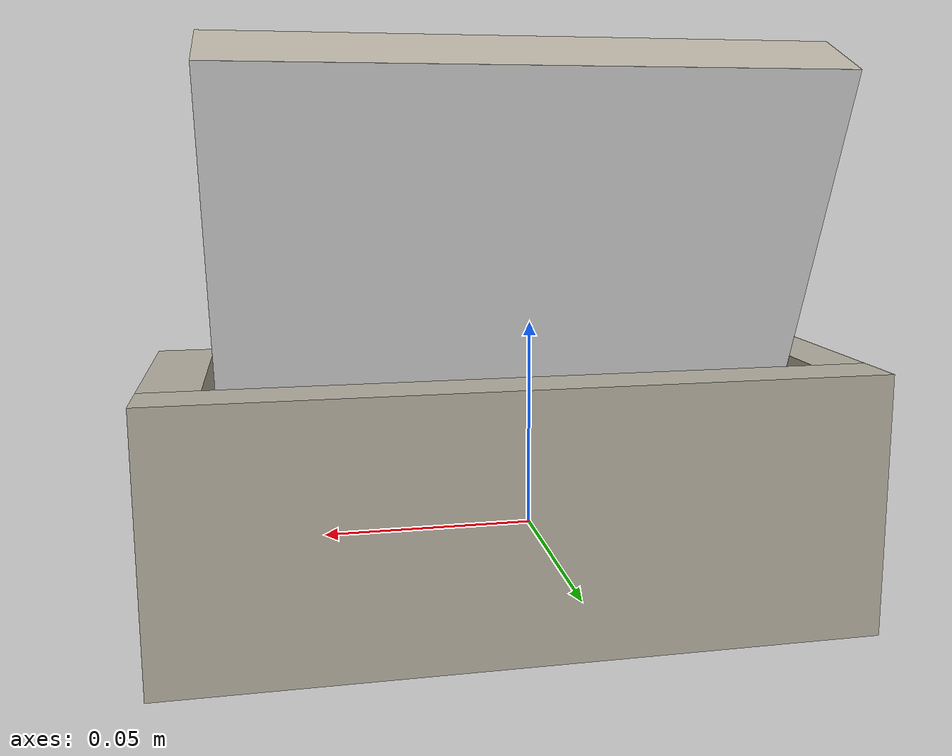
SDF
<?xml version ="1.0"?>
<sdf version="1.6">
    <model name="excavation_square_yellow">
        <static>false</static>
        <link name="excavation_square_yellow_base_link">
            <collision name="excavation_square_yellow_1_collision_1">
                <pose>0 0 0 0 0 0</pose>
                <geometry>
                    <box>
                        <size>0.185 0.015 0.07</size>
                    </box>
                </geometry>
            </collision>
            <collision name="excavation_square_yellow_1_collision_2">
                <pose>0.085 -0.035 0 0 0 0</pose>
                <geometry>
                    <box>
                        <size>0.015 0.055 0.07</size>
                    </box>
                </geometry>
            </collision>
            <collision name="excavation_suqare_yellow_1_collision_3">
                <pose>-0.085  -0.035 0 0 0 0</pose>
                <geometry>
                    <box>
                        <size>0.015 0.055 0.07</size>
                    </box>
                </geometry>
            </collision>
            <inertial>
                <inertia>
                    <ixx>0.01</ixx>
                    <ixy>0</ixy>
                    <ixz>0</ixz>
                    <iyy>0.01</iyy>
                    <iyz>0</iyz>
                    <izz>0.01</izz>
                </inertia>
                <mass>0.1</mass>
            </inertial>
            <visual name="excavation_square_yellow_1_visual_1">
                <pose>0 0 0 0 0 0</pose>
                <geometry>
                    <box>
                        <size>0.185 0.015 0.07</size>
                    </box>
                </geometry>
                <material>
                    <ambient>0.71 0.69 0.63 1.0</ambient>
                    <diffuse>0.71 0.69 0.63 1.0</diffuse>
                    <specular>0.1 0.1 0.1 1</specular>
                    <emissive>0 0 0 0</emissive>
                </material>
            </visual>
            <visual name="excavation_square_yellow_1_visual_2">
                <pose>0.085 -0.035 0 0 0 0</pose>
                <geometry>
                    <box>
                        <size>0.015 0.055 0.07</size>
                    </box>
                </geometry>
                <material>
                    <ambient>0.71 0.69 0.63 1.0</ambient>
                    <diffuse>0.71 0.69 0.63 1.0</diffuse>
                    <specular>0.1 0.1 0.1 1</specular>
                    <emissive>0 0 0 0</emissive>
                </material>
            </visual>
            <visual name="excavation_square_yellow_1_visual_3">
                <pose>-0.085 -0.035 0 0 0 0</pose>
                <geometry>
                    <box>
                        <size>0.015 0.055 0.07</size>
                    </box>
                </geometry>
                <material>
                    <ambient>0.71 0.69 0.63 1.0</ambient>
                    <diffuse>0.71 0.69 0.63 1.0</diffuse>
                    <specular>0.1 0.1 0.1 1</specular>
                    <emissive>0 0 0 0</emissive>
                </material>
            </visual>
        </link>
        <link name="excavation_square_yellow_image_holder">
            <pose>0 -0.0235 0.044 2.74016692563 0 0</pose>
            <collision name="excavation_square_yellow_image_holder_collision">
                <geometry>
                    <box>
                        <size>0.15 0.02 0.15</size>
                    </box>
                </geometry>
            </collision>
            <inertial>
                <inertia>
                    <ixx>0.01</ixx>
                    <ixy>0</ixy>
                    <ixz>0</ixz>
                    <iyy>0.01</iyy>
                    <iyz>0</iyz>
                    <izz>0.01</izz>
                </inertia>
                <mass>0.1</mass>
            </inertial>
            <visual name="excavation_square_yellow_image_holder_visual">
                <geometry>
                    <box>
                        <size>0.15 0.02 0.15</size>
                    </box>
                </geometry>
                <material>
                    <ambient>0.71 0.69 0.63 1.0</ambient>
                    <diffuse>0.71 0.69 0.63 1.0</diffuse>
                    <specular>0.1 0.1 0.1 1</specular>
                    <emissive>0 0 0 0</emissive>
                </material>
            </visual>
            <visual name="excavation_square_yellow_image_holder_texture">
                <pose>0 -0.01001 0 0 0 0</pose>
                <geometry>
                    <box>
                        <size>0.15 0.0001 0.15</size>
                    </box>
                </geometry>
                <material>
                    <ambient>1 1 1 1</ambient>
                    <diffuse>1 1 1 1</diffuse>
                    <specular>0.1 0.1 0.1 1</specular>
                    <pbr>
                        <metal>
                            <albedo_map>materials/textures/vinyle_excavation_yellow.png</albedo_map>
                            <roughness>1.0</roughness>
                            <metalness>0.0</metalness>
                        </metal>
                    </pbr>
                </material>
            </visual>

        </link>
        <joint name="image_holder_revolute" type="revolute">
            <parent>excavation_square_yellow_base_link</parent>
            <child>excavation_square_yellow_image_holder</child>
            <pose>0 0 0.07 0 0 0</pose>
            <axis>
                <xyz>1 0 0</xyz>
                <dynamics>
                    <damping>0.02</damping>
                </dynamics>
            </axis>
        </joint>
        <joint name="base_to_world" type="fixed">
            <parent>world</parent>
            <child>excavation_square_yellow_base_link</child>
            <pose>0 0 0 0 0 0</pose>
        </joint>
    </model>
</sdf>
